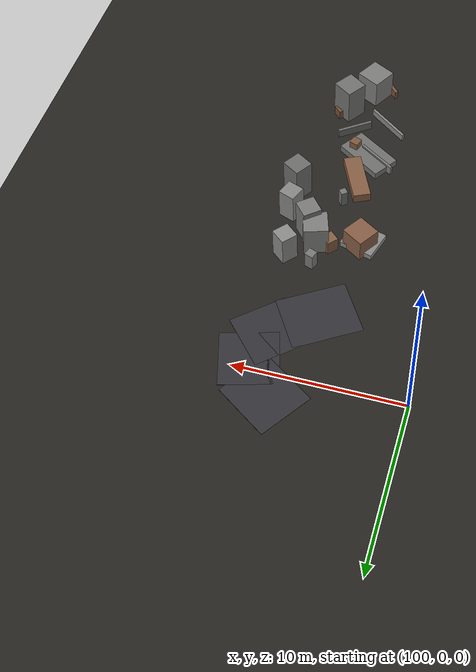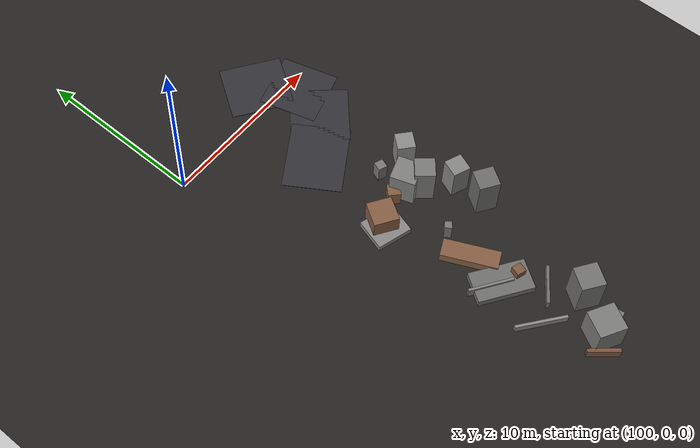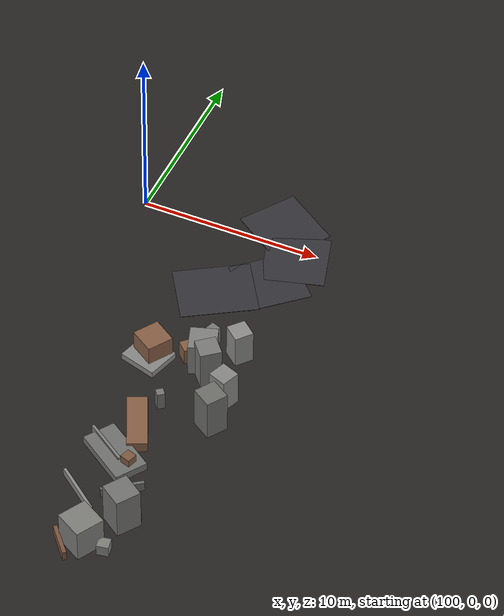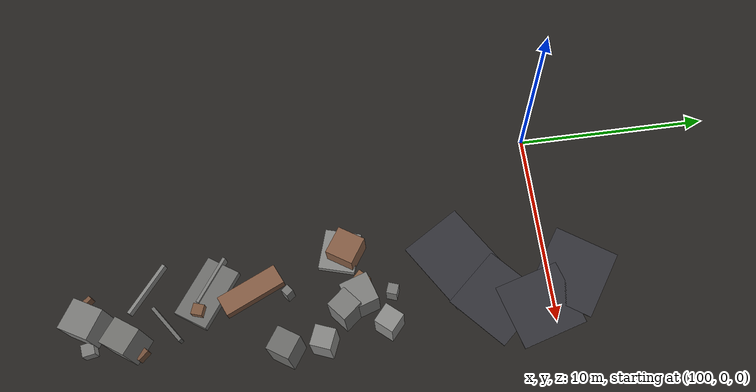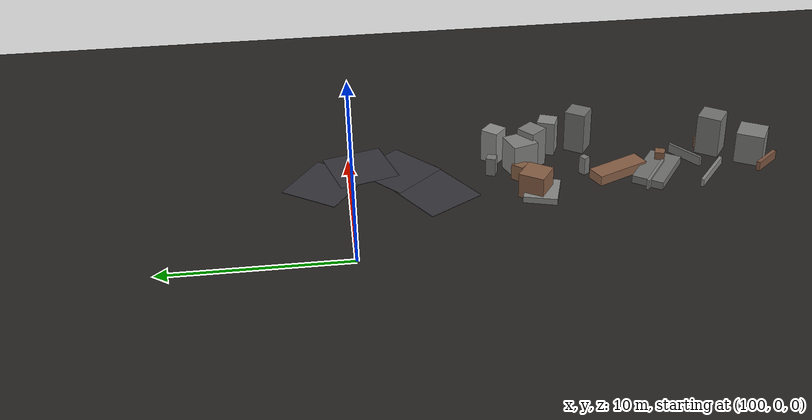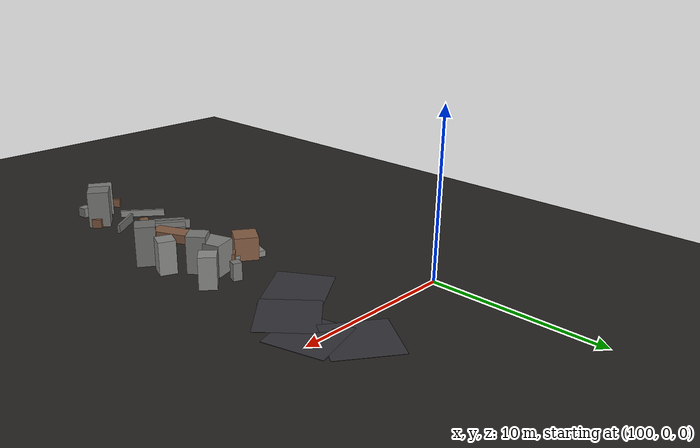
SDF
<sdf version="1.6">
 <world name="navitas_arena">
  <model name="ground_plane">
   <static>true</static>
   <link name="link">
    <collision name="collision">
     <geometry><plane><normal>0 0 1</normal><size>400 400</size></plane></geometry>
     <surface><friction><ode><mu>0.750</mu><mu2>0.750</mu2></ode></friction></surface>
    </collision>
    <visual name="visual">
     <cast_shadows>false</cast_shadows>
     <geometry><plane><normal>0 0 1</normal><size>400 400</size></plane></geometry>
     <material><ambient>0.150 0.140 0.130 1</ambient><diffuse>0.150 0.140 0.130 1</diffuse></material>
    </visual>
   </link>
  </model>
  <model name="road_zor_3_8">
   <static>true</static>
   <pose>106.156 -4.500 0.040 0 0 0.565</pose>
   <link name="link">
    <collision name="col"><geometry><box><size>4.169 3.400 0.020</size></box></geometry></collision>
    <visual name="vis">
     <geometry><box><size>4.169 3.400 0.020</size></box></geometry>
     <material><ambient>0.20 0.20 0.22 1</ambient><diffuse>0.20 0.20 0.22 1</diffuse></material>
    </visual>
   </link>
  </model>
  <model name="road_zor_3_9">
   <static>true</static>
   <pose>108.501 -2.750 0.040 0 0 0.737</pose>
   <link name="link">
    <collision name="col"><geometry><box><size>3.505 3.400 0.020</size></box></geometry></collision>
    <visual name="vis">
     <geometry><box><size>3.505 3.400 0.020</size></box></geometry>
     <material><ambient>0.20 0.20 0.22 1</ambient><diffuse>0.20 0.20 0.22 1</diffuse></material>
    </visual>
   </link>
  </model>
  <model name="road_zor_3_10">
   <static>true</static>
   <pose>109.115 -0.660 0.040 0 0 1.852</pose>
   <link name="link">
    <collision name="col"><geometry><box><size>3.430 3.400 0.020</size></box></geometry></collision>
    <visual name="vis">
     <geometry><box><size>3.430 3.400 0.020</size></box></geometry>
     <material><ambient>0.20 0.20 0.22 1</ambient><diffuse>0.20 0.20 0.22 1</diffuse></material>
    </visual>
   </link>
  </model>
  <model name="road_zor_3_11">
   <static>true</static>
   <pose>107.617 1.333 0.040 0 0 2.546</pose>
   <link name="link">
    <collision name="col"><geometry><box><size>3.671 3.400 0.020</size></box></geometry></collision>
    <visual name="vis">
     <geometry><box><size>3.671 3.400 0.020</size></box></geometry>
     <material><ambient>0.20 0.20 0.22 1</ambient><diffuse>0.20 0.20 0.22 1</diffuse></material>
    </visual>
   </link>
  </model>
  <model name="deb_zor_9">
   <static>true</static>
   <pose>108.538 -23.007 0.314 0 0 0.182</pose>
   <link name="link">
    <collision name="col"><geometry><box><size>0.626 0.626 0.629</size></box></geometry></collision>
    <visual name="vis">
     <geometry><box><size>0.626 0.626 0.629</size></box></geometry>
     <material><ambient>0.49 0.49 0.48 1</ambient><diffuse>0.49 0.49 0.48 1</diffuse></material>
    </visual>
   </link>
  </model>
  <model name="deb_zor_13">
   <static>true</static>
   <pose>107.313 -22.965 0.919 0 0 2.633</pose>
   <link name="link">
    <collision name="col"><geometry><box><size>1.584 1.584 1.838</size></box></geometry></collision>
    <visual name="vis">
     <geometry><box><size>1.584 1.584 1.838</size></box></geometry>
     <material><ambient>0.49 0.49 0.48 1</ambient><diffuse>0.49 0.49 0.48 1</diffuse></material>
    </visual>
   </link>
  </model>
  <model name="deb_zor_38">
   <static>true</static>
   <pose>108.371 -10.346 1.141 0 0 0.700</pose>
   <link name="link">
    <collision name="col"><geometry><box><size>1.146 1.146 2.283</size></box></geometry></collision>
    <visual name="vis">
     <geometry><box><size>1.146 1.146 2.283</size></box></geometry>
     <material><ambient>0.48 0.48 0.47 1</ambient><diffuse>0.48 0.48 0.47 1</diffuse></material>
    </visual>
   </link>
  </model>
  <model name="deb_zor_43">
   <static>true</static>
   <pose>109.889 -13.347 1.219 0 0 2.565</pose>
   <link name="link">
    <collision name="col"><geometry><box><size>1.203 1.203 2.438</size></box></geometry></collision>
    <visual name="vis">
     <geometry><box><size>1.203 1.203 2.438</size></box></geometry>
     <material><ambient>0.43 0.43 0.42 1</ambient><diffuse>0.43 0.43 0.42 1</diffuse></material>
    </visual>
   </link>
  </model>
  <model name="deb_zor_47">
   <static>true</static>
   <pose>106.971 -13.136 0.517 0 0 0.663</pose>
   <link name="link">
    <collision name="col"><geometry><box><size>0.421 0.421 1.034</size></box></geometry></collision>
    <visual name="vis">
     <geometry><box><size>0.421 0.421 1.034</size></box></geometry>
     <material><ambient>0.46 0.46 0.45 1</ambient><diffuse>0.46 0.46 0.45 1</diffuse></material>
    </visual>
   </link>
  </model>
  <model name="deb_zor_52">
   <static>true</static>
   <pose>108.544 -20.941 1.185 0 0 0.970</pose>
   <link name="link">
    <collision name="col"><geometry><box><size>1.365 1.365 2.370</size></box></geometry></collision>
    <visual name="vis">
     <geometry><box><size>1.365 1.365 2.370</size></box></geometry>
     <material><ambient>0.45 0.45 0.44 1</ambient><diffuse>0.45 0.45 0.44 1</diffuse></material>
    </visual>
   </link>
  </model>
  <model name="deb_zor_67">
   <static>true</static>
   <pose>106.564 -14.999 0.287 0 0 2.006</pose>
   <link name="link">
    <collision name="col"><geometry><box><size>3.205 1.069 0.574</size></box></geometry></collision>
    <visual name="vis">
     <geometry><box><size>3.205 1.069 0.574</size></box></geometry>
     <material><ambient>0.53 0.37 0.27 1</ambient><diffuse>0.53 0.37 0.27 1</diffuse></material>
    </visual>
   </link>
  </model>
  <model name="deb_zor_123">
   <static>true</static>
   <pose>106.860 -9.471 0.467 0 0 2.380</pose>
   <link name="link">
    <collision name="col"><geometry><box><size>0.720 0.720 0.934</size></box></geometry></collision>
    <visual name="vis">
     <geometry><box><size>0.720 0.720 0.934</size></box></geometry>
     <material><ambient>0.52 0.37 0.26 1</ambient><diffuse>0.52 0.37 0.26 1</diffuse></material>
    </visual>
   </link>
  </model>
  <model name="deb_zor_161">
   <static>true</static>
   <pose>107.760 -9.596 0.962 0 0 0.321</pose>
   <link name="link">
    <collision name="col"><geometry><box><size>1.466 1.466 1.924</size></box></geometry></collision>
    <visual name="vis">
     <geometry><box><size>1.466 1.466 1.924</size></box></geometry>
     <material><ambient>0.50 0.50 0.49 1</ambient><diffuse>0.50 0.50 0.49 1</diffuse></material>
    </visual>
   </link>
  </model>
  <model name="deb_zor_189">
   <static>true</static>
   <pose>109.245 -8.307 0.964 0 0 0.865</pose>
   <link name="link">
    <collision name="col"><geometry><box><size>1.033 1.033 1.928</size></box></geometry></collision>
    <visual name="vis">
     <geometry><box><size>1.033 1.033 1.928</size></box></geometry>
     <material><ambient>0.55 0.55 0.54 1</ambient><diffuse>0.55 0.55 0.54 1</diffuse></material>
    </visual>
   </link>
  </model>
  <model name="deb_zor_202">
   <static>true</static>
   <pose>106.452 -23.633 0.273 0 0 2.280</pose>
   <link name="link">
    <collision name="col"><geometry><box><size>1.797 0.216 0.546</size></box></geometry></collision>
    <visual name="vis">
     <geometry><box><size>1.797 0.216 0.546</size></box></geometry>
     <material><ambient>0.48 0.33 0.24 1</ambient><diffuse>0.48 0.33 0.24 1</diffuse></material>
    </visual>
   </link>
  </model>
  <model name="deb_zor_205">
   <static>true</static>
   <pose>107.582 -7.954 0.533 0 0 2.796</pose>
   <link name="link">
    <collision name="col"><geometry><box><size>0.539 0.539 1.066</size></box></geometry></collision>
    <visual name="vis">
     <geometry><box><size>0.539 0.539 1.066</size></box></geometry>
     <material><ambient>0.47 0.47 0.46 1</ambient><diffuse>0.47 0.47 0.46 1</diffuse></material>
    </visual>
   </link>
  </model>
  <model name="deb_zor_207">
   <static>true</static>
   <pose>108.979 -20.543 0.295 0 0 0.763</pose>
   <link name="link">
    <collision name="col"><geometry><box><size>0.616 0.616 0.590</size></box></geometry></collision>
    <visual name="vis">
     <geometry><box><size>0.616 0.616 0.590</size></box></geometry>
     <material><ambient>0.46 0.32 0.23 1</ambient><diffuse>0.46 0.32 0.23 1</diffuse></material>
    </visual>
   </link>
  </model>
  <model name="deb_zor_252">
   <static>true</static>
   <pose>107.304 -17.594 0.445 0 0 1.257</pose>
   <link name="link">
    <collision name="col"><geometry><box><size>0.558 0.558 0.890</size></box></geometry></collision>
    <visual name="vis">
     <geometry><box><size>0.558 0.558 0.890</size></box></geometry>
     <material><ambient>0.50 0.35 0.25 1</ambient><diffuse>0.50 0.35 0.25 1</diffuse></material>
    </visual>
   </link>
  </model>
  <model name="deb_zor_263">
   <static>true</static>
   <pose>105.768 -16.947 0.292 0 0 2.552</pose>
   <link name="link">
    <collision name="col"><geometry><box><size>2.584 0.154 0.585</size></box></geometry></collision>
    <visual name="vis">
     <geometry><box><size>2.584 0.154 0.585</size></box></geometry>
     <material><ambient>0.50 0.50 0.49 1</ambient><diffuse>0.50 0.50 0.49 1</diffuse></material>
    </visual>
   </link>
  </model>
  <model name="deb_zor_265">
   <static>true</static>
   <pose>105.143 -10.043 0.716 0 0 2.570</pose>
   <link name="link">
    <collision name="col"><geometry><box><size>1.452 1.452 1.433</size></box></geometry></collision>
    <visual name="vis">
     <geometry><box><size>1.452 1.452 1.433</size></box></geometry>
     <material><ambient>0.53 0.37 0.27 1</ambient><diffuse>0.53 0.37 0.27 1</diffuse></material>
    </visual>
   </link>
  </model>
  <model name="deb_zor_283">
   <static>true</static>
   <pose>109.776 -11.521 1.010 0 0 2.768</pose>
   <link name="link">
    <collision name="col"><geometry><box><size>1.037 1.037 2.021</size></box></geometry></collision>
    <visual name="vis">
     <geometry><box><size>1.037 1.037 2.021</size></box></geometry>
     <material><ambient>0.53 0.53 0.52 1</ambient><diffuse>0.53 0.53 0.52 1</diffuse></material>
    </visual>
   </link>
  </model>
  <model name="deb_zor_285">
   <static>true</static>
   <pose>105.037 -10.381 0.182 0 0 2.860</pose>
   <link name="link">
    <collision name="col"><geometry><box><size>2.090 1.856 0.365</size></box></geometry></collision>
    <visual name="vis">
     <geometry><box><size>2.090 1.856 0.365</size></box></geometry>
     <material><ambient>0.53 0.53 0.52 1</ambient><diffuse>0.53 0.53 0.52 1</diffuse></material>
    </visual>
   </link>
  </model>
  <model name="deb_zor_288">
   <static>true</static>
   <pose>107.737 -19.222 0.273 0 0 0.626</pose>
   <link name="link">
    <collision name="col"><geometry><box><size>2.240 0.174 0.546</size></box></geometry></collision>
    <visual name="vis">
     <geometry><box><size>2.240 0.174 0.546</size></box></geometry>
     <material><ambient>0.43 0.43 0.42 1</ambient><diffuse>0.43 0.43 0.42 1</diffuse></material>
    </visual>
   </link>
  </model>
  <model name="deb_zor_296">
   <static>true</static>
   <pose>105.770 -20.207 0.221 0 0 2.485</pose>
   <link name="link">
    <collision name="col"><geometry><box><size>2.925 0.168 0.441</size></box></geometry></collision>
    <visual name="vis">
     <geometry><box><size>2.925 0.168 0.441</size></box></geometry>
     <material><ambient>0.53 0.53 0.52 1</ambient><diffuse>0.53 0.53 0.52 1</diffuse></material>
    </visual>
   </link>
  </model>
  <model name="deb_zor_305">
   <static>true</static>
   <pose>107.077 -15.854 0.262 0 0 1.949</pose>
   <link name="link">
    <collision name="col"><geometry><box><size>0.586 0.586 0.524</size></box></geometry></collision>
    <visual name="vis">
     <geometry><box><size>0.586 0.586 0.524</size></box></geometry>
     <material><ambient>0.51 0.36 0.26 1</ambient><diffuse>0.51 0.36 0.26 1</diffuse></material>
    </visual>
   </link>
  </model>
  <model name="deb_zor_309">
   <static>true</static>
   <pose>106.367 -17.194 0.224 0 0 2.551</pose>
   <link name="link">
    <collision name="col"><geometry><box><size>3.219 1.798 0.449</size></box></geometry></collision>
    <visual name="vis">
     <geometry><box><size>3.219 1.798 0.449</size></box></geometry>
     <material><ambient>0.44 0.44 0.43 1</ambient><diffuse>0.44 0.44 0.43 1</diffuse></material>
    </visual>
   </link>
  </model>
 </world>
</sdf>
